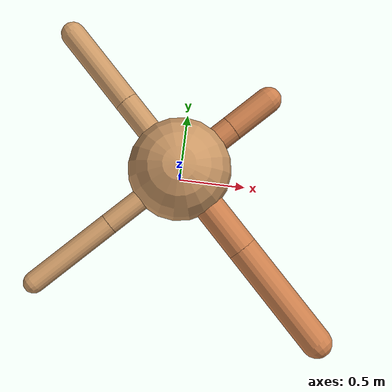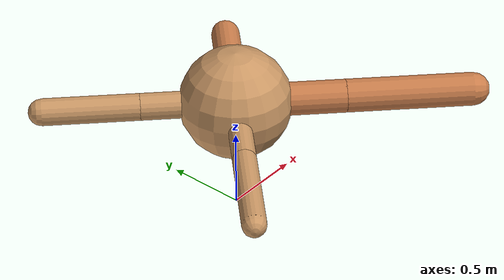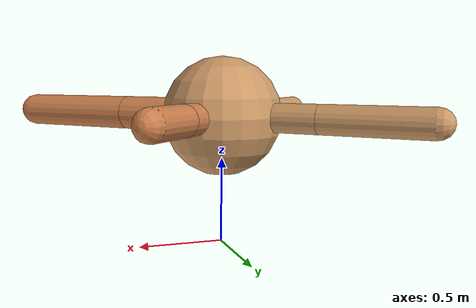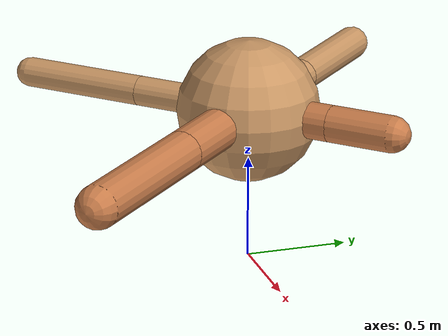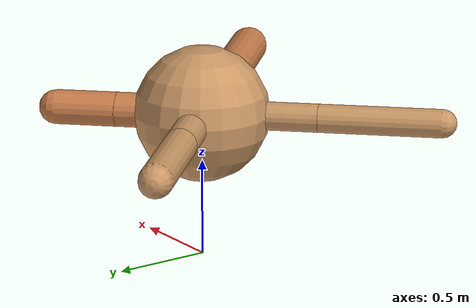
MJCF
<?xml version="1.0" ?>
<mujoco model="ant">

	<compiler angle="degree" coordinate="local" inertiafromgeom="true"/>

	<option integrator="RK4" timestep="0.01"/>

	<custom>

		<numeric data="0.0 0.0 0.55 1.0 0.0 0.0 0.0 0.0 1.0 0.0 -1.0 0.0 -1.0 0.0 1.0" name="init_qpos"/>

	</custom>

	<default>

		<joint armature="1" damping="1" limited="true"/>

		<geom conaffinity="0" condim="3" density="5.0" friction="1.5 0.1 0.1" margin="0.01" rgba="0.8 0.6 0.4 1"/>

	</default>

	<worldbody>

		<body name="torso" pos="0 0 0.75">

			<geom name="torso_geom" pos="0 0 0" size="0.3474448329522893" type="sphere"/>

			<!--joint armature="0" damping="0" limited="false" margin="0.01" name="root" pos="0 0 0" type="free"/-->

			<body name="front_left_leg" pos="0 0 0">

				<geom fromto="0 0 0 0.2 0.2 0" name="aux_1_geom" size="0.08929655042408724" type="capsule" rgba=".8 .5 .3 1"/>

				<body name="aux_1" pos="0.2 0.2 0">

					<joint axis="0 0 1" name="hip_1" pos="0.0 0.0 0.0" range="-40 40" type="hinge"/>

					<geom fromto="0 0 0 0.11183454090549937 0.11183454090549937 0" name="left_leg_geom" size="0.08929655042408724" type="capsule" rgba=".8 .5 .3 1"/>

					<body pos="0.11183454090549937 0.11183454090549937 0" name="front_left_foot">

						<joint axis="-1 1 0" name="ankle_1" pos="0.0 0.0 0.0" range="30 100" type="hinge"/>

						<geom fromto="0 0 0 0.22366908181099873 0.22366908181099873 0" name="left_ankle_geom" size="0.08929655042408724" type="capsule" rgba=".8 .5 .3 1"/>

					</body>

				</body>

			</body>

			<body name="front_right_leg" pos="0 0 0">

				<geom fromto="0 0 0 -0.2 0.2 0" name="aux_2_geom" size="0.08351142829153677" type="capsule"/>

				<body name="aux_2" pos="-0.2 0.2 0">

					<joint axis="0 0 1" name="hip_2" pos="0.0 0.0 0.0" range="-40 40" type="hinge"/>

					<geom fromto="0 0 0 -0.20896640867284866 0.20896640867284866 0" name="right_leg_geom" size="0.08351142829153677" type="capsule"/>

					<body pos="-0.20896640867284866 0.20896640867284866 0" name="front_right_foot">

						<joint axis="1 1 0" name="ankle_2" pos="0.0 0.0 0.0" range="-100 -30" type="hinge"/>

						<geom fromto="0 0 0 -0.4179328173456973 0.4179328173456973 0" name="right_ankle_geom" size="0.08351142829153677" type="capsule"/>

					</body>

				</body>

			</body>

			<body name="left_back_leg" pos="0 0 0">

				<geom fromto="0 0 0 -0.2 -0.2 0" name="aux_3_geom" size="0.07300837277842763" type="capsule"/>

				<body name="aux_3" pos="-0.2 -0.2 0">

					<joint axis="0 0 1" name="hip_3" pos="0.0 0.0 0.0" range="-40 40" type="hinge"/>

					<geom fromto="0 0 0 -0.2203720608612524 -0.2203720608612524 0" name="back_leg_geom" size="0.07300837277842763" type="capsule"/>

					<body pos="-0.2203720608612524 -0.2203720608612524 0" name="left_back_foot">

						<joint axis="-1 1 0" name="ankle_3" pos="0.0 0.0 0.0" range="-100 -30" type="hinge"/>

						<geom fromto="0 0 0 -0.4407441217225048 -0.4407441217225048 0" name="third_ankle_geom" size="0.07300837277842763" type="capsule"/>

					</body>

				</body>

			</body>

			<body name="right_back_leg" pos="0 0 0">

				<geom fromto="0 0 0 0.2 -0.2 0" name="aux_4_geom" size="0.10299504635524741" type="capsule" rgba=".8 .5 .3 1"/>

				<body name="aux_4" pos="0.2 -0.2 0">

					<joint axis="0 0 1" name="hip_4" pos="0.0 0.0 0.0" range="-40 40" type="hinge"/>

					<geom fromto="0 0 0 0.27588017843942375 -0.27588017843942375 0" name="rightback_leg_geom" size="0.10299504635524741" type="capsule" rgba=".8 .5 .3 1"/>

					<body pos="0.27588017843942375 -0.27588017843942375 0" name="right_back_foot">

						<joint axis="1 1 0" name="ankle_4" pos="0.0 0.0 0.0" range="30 100" type="hinge"/>

						<geom fromto="0 0 0 0.5517603568788475 -0.5517603568788475 0" name="fourth_ankle_geom" size="0.10299504635524741" type="capsule" rgba=".8 .5 .3 1"/>

					</body>

				</body>

			</body>

		</body>

	</worldbody>

	<actuator>

		<motor ctrllimited="true" ctrlrange="-1.0 1.0" joint="hip_4" gear="150"/>

		<motor ctrllimited="true" ctrlrange="-1.0 1.0" joint="ankle_4" gear="150"/>

		<motor ctrllimited="true" ctrlrange="-1.0 1.0" joint="hip_1" gear="150"/>

		<motor ctrllimited="true" ctrlrange="-1.0 1.0" joint="ankle_1" gear="150"/>

		<motor ctrllimited="true" ctrlrange="-1.0 1.0" joint="hip_2" gear="150"/>

		<motor ctrllimited="true" ctrlrange="-1.0 1.0" joint="ankle_2" gear="150"/>

		<motor ctrllimited="true" ctrlrange="-1.0 1.0" joint="hip_3" gear="150"/>

		<motor ctrllimited="true" ctrlrange="-1.0 1.0" joint="ankle_3" gear="150"/>

	</actuator>

</mujoco>
